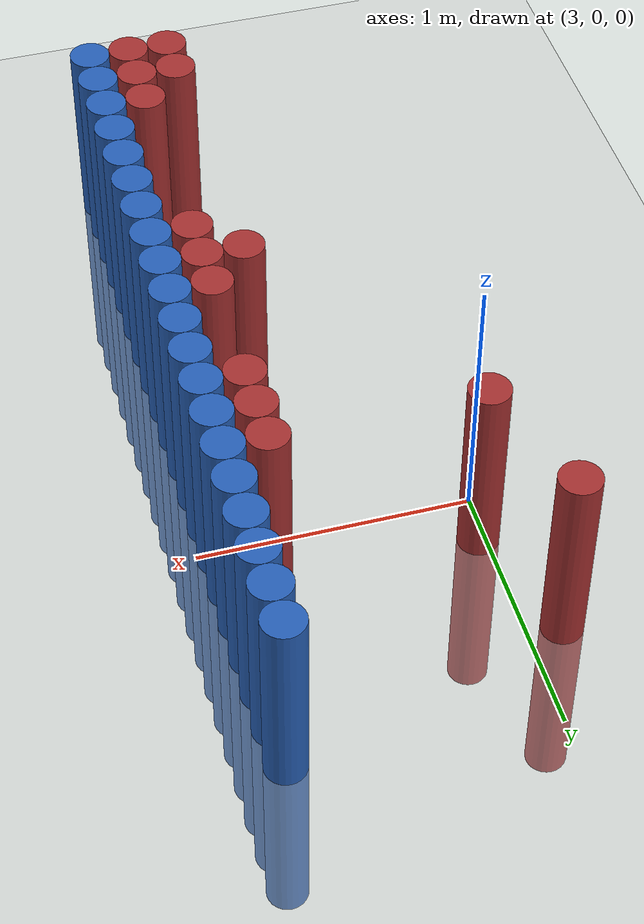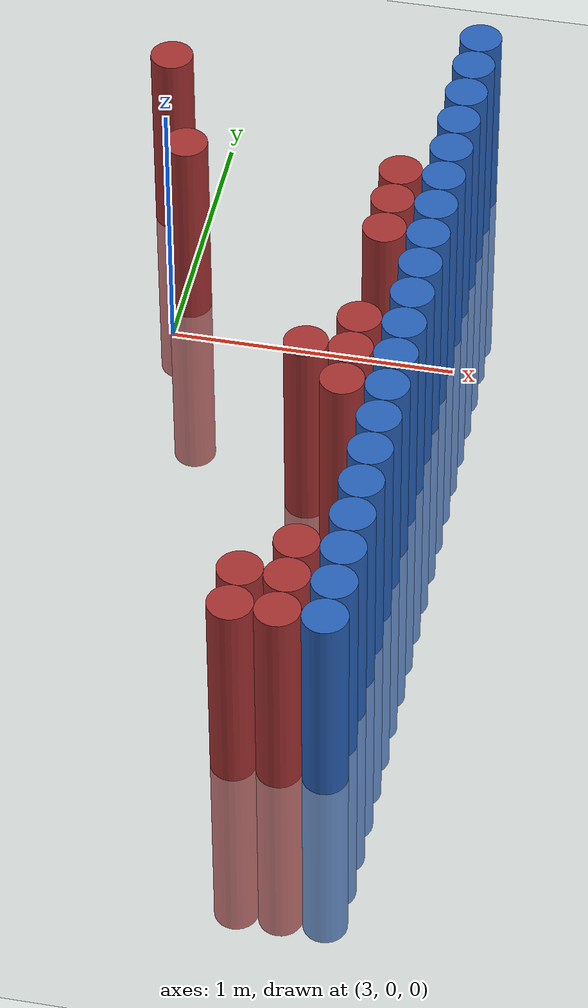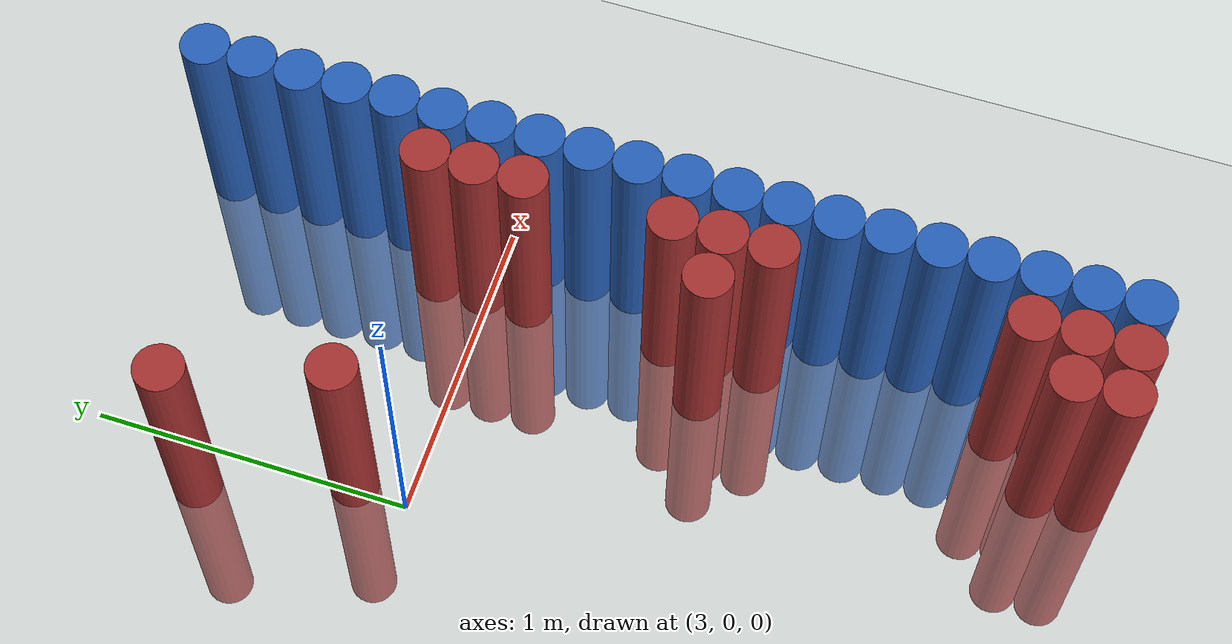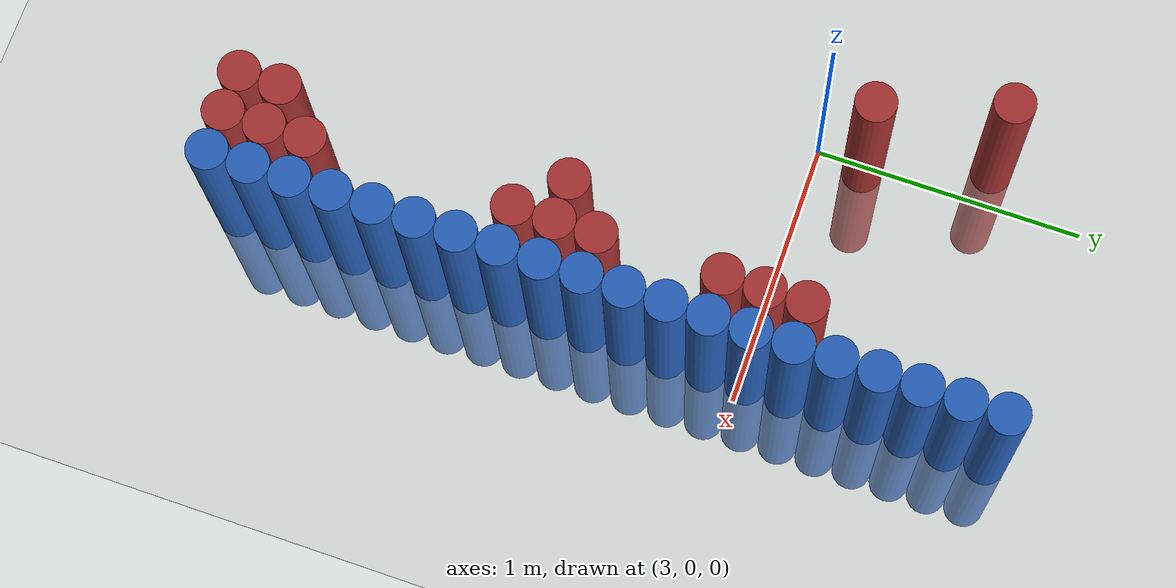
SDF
<sdf version="1.6">
 <world name="default">
  <model name="ground_plane">
   <static>1</static>
   <link name="link">
    <collision name="collision">
     <geometry><plane><normal>0 0 1</normal><size>100 100</size></plane></geometry>
     <surface><friction><ode><mu>100</mu><mu2>50</mu2></ode></friction></surface>
    </collision>
    <visual name="visual">
     <cast_shadows>0</cast_shadows>
     <geometry><plane><normal>0 0 1</normal><size>100 100</size></plane></geometry>
     <material>
      <script><uri>file://media/materials/scripts/gazebo.material</uri><name>Gazebo/Grey</name></script>
     </material>
    </visual>
   </link>
  </model>
  <model name="unit_cylinder_88">
   <static>1</static>
   <pose>3.925000 -1.925000 0.000000 0.000000 0.000000 0.000000</pose>
   <link name="link">
    <inertial>
     <mass>1</mass>
     <inertia><ixx>0.145833</ixx><ixy>0</ixy><ixz>0</ixz><iyy>0.145833</iyy><iyz>0</iyz><izz>0.125</izz></inertia>
    </inertial>
    <collision name="collision">
     <geometry><cylinder><radius>0.075000</radius><length>1.5</length></cylinder></geometry>
    </collision>
    <visual name="visual">
     <geometry><cylinder><radius>0.075000</radius><length>1.5</length></cylinder></geometry>
     <material>
      <ambient>0.152000 0.379000 0.720000 1</ambient>
      <diffuse>0.152000 0.379000 0.720000 1</diffuse>
     </material>
     <material>
      <script><name>Gazebo/Grey</name><uri>file://media/materials/scripts/gazebo.material</uri></script>
     </material>
    </visual>
   </link>
  </model>
  <model name="unit_cylinder_90">
   <static>1</static>
   <pose>3.925000 -1.775000 0.000000 0.000000 0.000000 0.000000</pose>
   <link name="link">
    <inertial>
     <mass>1</mass>
     <inertia><ixx>0.145833</ixx><ixy>0</ixy><ixz>0</ixz><iyy>0.145833</iyy><iyz>0</iyz><izz>0.125</izz></inertia>
    </inertial>
    <collision name="collision">
     <geometry><cylinder><radius>0.075000</radius><length>1.5</length></cylinder></geometry>
    </collision>
    <visual name="visual">
     <geometry><cylinder><radius>0.075000</radius><length>1.5</length></cylinder></geometry>
     <material>
      <ambient>0.152000 0.379000 0.720000 1</ambient>
      <diffuse>0.152000 0.379000 0.720000 1</diffuse>
     </material>
     <material>
      <script><name>Gazebo/Grey</name><uri>file://media/materials/scripts/gazebo.material</uri></script>
     </material>
    </visual>
   </link>
  </model>
  <model name="unit_cylinder_92">
   <static>1</static>
   <pose>3.925000 -1.625000 0.000000 0.000000 0.000000 0.000000</pose>
   <link name="link">
    <inertial>
     <mass>1</mass>
     <inertia><ixx>0.145833</ixx><ixy>0</ixy><ixz>0</ixz><iyy>0.145833</iyy><iyz>0</iyz><izz>0.125</izz></inertia>
    </inertial>
    <collision name="collision">
     <geometry><cylinder><radius>0.075000</radius><length>1.5</length></cylinder></geometry>
    </collision>
    <visual name="visual">
     <geometry><cylinder><radius>0.075000</radius><length>1.5</length></cylinder></geometry>
     <material>
      <ambient>0.152000 0.379000 0.720000 1</ambient>
      <diffuse>0.152000 0.379000 0.720000 1</diffuse>
     </material>
     <material>
      <script><name>Gazebo/Grey</name><uri>file://media/materials/scripts/gazebo.material</uri></script>
     </material>
    </visual>
   </link>
  </model>
  <model name="unit_cylinder_94">
   <static>1</static>
   <pose>3.925000 -1.475000 0.000000 0.000000 0.000000 0.000000</pose>
   <link name="link">
    <inertial>
     <mass>1</mass>
     <inertia><ixx>0.145833</ixx><ixy>0</ixy><ixz>0</ixz><iyy>0.145833</iyy><iyz>0</iyz><izz>0.125</izz></inertia>
    </inertial>
    <collision name="collision">
     <geometry><cylinder><radius>0.075000</radius><length>1.5</length></cylinder></geometry>
    </collision>
    <visual name="visual">
     <geometry><cylinder><radius>0.075000</radius><length>1.5</length></cylinder></geometry>
     <material>
      <ambient>0.152000 0.379000 0.720000 1</ambient>
      <diffuse>0.152000 0.379000 0.720000 1</diffuse>
     </material>
     <material>
      <script><name>Gazebo/Grey</name><uri>file://media/materials/scripts/gazebo.material</uri></script>
     </material>
    </visual>
   </link>
  </model>
  <model name="unit_cylinder_96">
   <static>1</static>
   <pose>3.925000 -1.325000 0.000000 0.000000 0.000000 0.000000</pose>
   <link name="link">
    <inertial>
     <mass>1</mass>
     <inertia><ixx>0.145833</ixx><ixy>0</ixy><ixz>0</ixz><iyy>0.145833</iyy><iyz>0</iyz><izz>0.125</izz></inertia>
    </inertial>
    <collision name="collision">
     <geometry><cylinder><radius>0.075000</radius><length>1.5</length></cylinder></geometry>
    </collision>
    <visual name="visual">
     <geometry><cylinder><radius>0.075000</radius><length>1.5</length></cylinder></geometry>
     <material>
      <ambient>0.152000 0.379000 0.720000 1</ambient>
      <diffuse>0.152000 0.379000 0.720000 1</diffuse>
     </material>
     <material>
      <script><name>Gazebo/Grey</name><uri>file://media/materials/scripts/gazebo.material</uri></script>
     </material>
    </visual>
   </link>
  </model>
  <model name="unit_cylinder_98">
   <static>1</static>
   <pose>3.925000 -1.175000 0.000000 0.000000 0.000000 0.000000</pose>
   <link name="link">
    <inertial>
     <mass>1</mass>
     <inertia><ixx>0.145833</ixx><ixy>0</ixy><ixz>0</ixz><iyy>0.145833</iyy><iyz>0</iyz><izz>0.125</izz></inertia>
    </inertial>
    <collision name="collision">
     <geometry><cylinder><radius>0.075000</radius><length>1.5</length></cylinder></geometry>
    </collision>
    <visual name="visual">
     <geometry><cylinder><radius>0.075000</radius><length>1.5</length></cylinder></geometry>
     <material>
      <ambient>0.152000 0.379000 0.720000 1</ambient>
      <diffuse>0.152000 0.379000 0.720000 1</diffuse>
     </material>
     <material>
      <script><name>Gazebo/Grey</name><uri>file://media/materials/scripts/gazebo.material</uri></script>
     </material>
    </visual>
   </link>
  </model>
  <model name="unit_cylinder_100">
   <static>1</static>
   <pose>3.925000 -1.025000 0.000000 0.000000 0.000000 0.000000</pose>
   <link name="link">
    <inertial>
     <mass>1</mass>
     <inertia><ixx>0.145833</ixx><ixy>0</ixy><ixz>0</ixz><iyy>0.145833</iyy><iyz>0</iyz><izz>0.125</izz></inertia>
    </inertial>
    <collision name="collision">
     <geometry><cylinder><radius>0.075000</radius><length>1.5</length></cylinder></geometry>
    </collision>
    <visual name="visual">
     <geometry><cylinder><radius>0.075000</radius><length>1.5</length></cylinder></geometry>
     <material>
      <ambient>0.152000 0.379000 0.720000 1</ambient>
      <diffuse>0.152000 0.379000 0.720000 1</diffuse>
     </material>
     <material>
      <script><name>Gazebo/Grey</name><uri>file://media/materials/scripts/gazebo.material</uri></script>
     </material>
    </visual>
   </link>
  </model>
  <model name="unit_cylinder_102">
   <static>1</static>
   <pose>3.925000 -0.875000 0.000000 0.000000 0.000000 0.000000</pose>
   <link name="link">
    <inertial>
     <mass>1</mass>
     <inertia><ixx>0.145833</ixx><ixy>0</ixy><ixz>0</ixz><iyy>0.145833</iyy><iyz>0</iyz><izz>0.125</izz></inertia>
    </inertial>
    <collision name="collision">
     <geometry><cylinder><radius>0.075000</radius><length>1.5</length></cylinder></geometry>
    </collision>
    <visual name="visual">
     <geometry><cylinder><radius>0.075000</radius><length>1.5</length></cylinder></geometry>
     <material>
      <ambient>0.152000 0.379000 0.720000 1</ambient>
      <diffuse>0.152000 0.379000 0.720000 1</diffuse>
     </material>
     <material>
      <script><name>Gazebo/Grey</name><uri>file://media/materials/scripts/gazebo.material</uri></script>
     </material>
    </visual>
   </link>
  </model>
  <model name="unit_cylinder_104">
   <static>1</static>
   <pose>3.925000 -0.725000 0.000000 0.000000 0.000000 0.000000</pose>
   <link name="link">
    <inertial>
     <mass>1</mass>
     <inertia><ixx>0.145833</ixx><ixy>0</ixy><ixz>0</ixz><iyy>0.145833</iyy><iyz>0</iyz><izz>0.125</izz></inertia>
    </inertial>
    <collision name="collision">
     <geometry><cylinder><radius>0.075000</radius><length>1.5</length></cylinder></geometry>
    </collision>
    <visual name="visual">
     <geometry><cylinder><radius>0.075000</radius><length>1.5</length></cylinder></geometry>
     <material>
      <ambient>0.152000 0.379000 0.720000 1</ambient>
      <diffuse>0.152000 0.379000 0.720000 1</diffuse>
     </material>
     <material>
      <script><name>Gazebo/Grey</name><uri>file://media/materials/scripts/gazebo.material</uri></script>
     </material>
    </visual>
   </link>
  </model>
  <model name="unit_cylinder_106">
   <static>1</static>
   <pose>3.925000 -0.575000 0.000000 0.000000 0.000000 0.000000</pose>
   <link name="link">
    <inertial>
     <mass>1</mass>
     <inertia><ixx>0.145833</ixx><ixy>0</ixy><ixz>0</ixz><iyy>0.145833</iyy><iyz>0</iyz><izz>0.125</izz></inertia>
    </inertial>
    <collision name="collision">
     <geometry><cylinder><radius>0.075000</radius><length>1.5</length></cylinder></geometry>
    </collision>
    <visual name="visual">
     <geometry><cylinder><radius>0.075000</radius><length>1.5</length></cylinder></geometry>
     <material>
      <ambient>0.152000 0.379000 0.720000 1</ambient>
      <diffuse>0.152000 0.379000 0.720000 1</diffuse>
     </material>
     <material>
      <script><name>Gazebo/Grey</name><uri>file://media/materials/scripts/gazebo.material</uri></script>
     </material>
    </visual>
   </link>
  </model>
  <model name="unit_cylinder_108">
   <static>1</static>
   <pose>3.925000 -0.425000 0.000000 0.000000 0.000000 0.000000</pose>
   <link name="link">
    <inertial>
     <mass>1</mass>
     <inertia><ixx>0.145833</ixx><ixy>0</ixy><ixz>0</ixz><iyy>0.145833</iyy><iyz>0</iyz><izz>0.125</izz></inertia>
    </inertial>
    <collision name="collision">
     <geometry><cylinder><radius>0.075000</radius><length>1.5</length></cylinder></geometry>
    </collision>
    <visual name="visual">
     <geometry><cylinder><radius>0.075000</radius><length>1.5</length></cylinder></geometry>
     <material>
      <ambient>0.152000 0.379000 0.720000 1</ambient>
      <diffuse>0.152000 0.379000 0.720000 1</diffuse>
     </material>
     <material>
      <script><name>Gazebo/Grey</name><uri>file://media/materials/scripts/gazebo.material</uri></script>
     </material>
    </visual>
   </link>
  </model>
  <model name="unit_cylinder_110">
   <static>1</static>
   <pose>3.925000 -0.275000 0.000000 0.000000 0.000000 0.000000</pose>
   <link name="link">
    <inertial>
     <mass>1</mass>
     <inertia><ixx>0.145833</ixx><ixy>0</ixy><ixz>0</ixz><iyy>0.145833</iyy><iyz>0</iyz><izz>0.125</izz></inertia>
    </inertial>
    <collision name="collision">
     <geometry><cylinder><radius>0.075000</radius><length>1.5</length></cylinder></geometry>
    </collision>
    <visual name="visual">
     <geometry><cylinder><radius>0.075000</radius><length>1.5</length></cylinder></geometry>
     <material>
      <ambient>0.152000 0.379000 0.720000 1</ambient>
      <diffuse>0.152000 0.379000 0.720000 1</diffuse>
     </material>
     <material>
      <script><name>Gazebo/Grey</name><uri>file://media/materials/scripts/gazebo.material</uri></script>
     </material>
    </visual>
   </link>
  </model>
  <model name="unit_cylinder_112">
   <static>1</static>
   <pose>3.925000 -0.125000 0.000000 0.000000 0.000000 0.000000</pose>
   <link name="link">
    <inertial>
     <mass>1</mass>
     <inertia><ixx>0.145833</ixx><ixy>0</ixy><ixz>0</ixz><iyy>0.145833</iyy><iyz>0</iyz><izz>0.125</izz></inertia>
    </inertial>
    <collision name="collision">
     <geometry><cylinder><radius>0.075000</radius><length>1.5</length></cylinder></geometry>
    </collision>
    <visual name="visual">
     <geometry><cylinder><radius>0.075000</radius><length>1.5</length></cylinder></geometry>
     <material>
      <ambient>0.152000 0.379000 0.720000 1</ambient>
      <diffuse>0.152000 0.379000 0.720000 1</diffuse>
     </material>
     <material>
      <script><name>Gazebo/Grey</name><uri>file://media/materials/scripts/gazebo.material</uri></script>
     </material>
    </visual>
   </link>
  </model>
  <model name="unit_cylinder_114">
   <static>1</static>
   <pose>3.925000 0.025000 0.000000 0.000000 0.000000 0.000000</pose>
   <link name="link">
    <inertial>
     <mass>1</mass>
     <inertia><ixx>0.145833</ixx><ixy>0</ixy><ixz>0</ixz><iyy>0.145833</iyy><iyz>0</iyz><izz>0.125</izz></inertia>
    </inertial>
    <collision name="collision">
     <geometry><cylinder><radius>0.075000</radius><length>1.5</length></cylinder></geometry>
    </collision>
    <visual name="visual">
     <geometry><cylinder><radius>0.075000</radius><length>1.5</length></cylinder></geometry>
     <material>
      <ambient>0.152000 0.379000 0.720000 1</ambient>
      <diffuse>0.152000 0.379000 0.720000 1</diffuse>
     </material>
     <material>
      <script><name>Gazebo/Grey</name><uri>file://media/materials/scripts/gazebo.material</uri></script>
     </material>
    </visual>
   </link>
  </model>
  <model name="unit_cylinder_116">
   <static>1</static>
   <pose>3.925000 0.175000 0.000000 0.000000 0.000000 0.000000</pose>
   <link name="link">
    <inertial>
     <mass>1</mass>
     <inertia><ixx>0.145833</ixx><ixy>0</ixy><ixz>0</ixz><iyy>0.145833</iyy><iyz>0</iyz><izz>0.125</izz></inertia>
    </inertial>
    <collision name="collision">
     <geometry><cylinder><radius>0.075000</radius><length>1.5</length></cylinder></geometry>
    </collision>
    <visual name="visual">
     <geometry><cylinder><radius>0.075000</radius><length>1.5</length></cylinder></geometry>
     <material>
      <ambient>0.152000 0.379000 0.720000 1</ambient>
      <diffuse>0.152000 0.379000 0.720000 1</diffuse>
     </material>
     <material>
      <script><name>Gazebo/Grey</name><uri>file://media/materials/scripts/gazebo.material</uri></script>
     </material>
    </visual>
   </link>
  </model>
  <model name="unit_cylinder_118">
   <static>1</static>
   <pose>3.925000 0.325000 0.000000 0.000000 0.000000 0.000000</pose>
   <link name="link">
    <inertial>
     <mass>1</mass>
     <inertia><ixx>0.145833</ixx><ixy>0</ixy><ixz>0</ixz><iyy>0.145833</iyy><iyz>0</iyz><izz>0.125</izz></inertia>
    </inertial>
    <collision name="collision">
     <geometry><cylinder><radius>0.075000</radius><length>1.5</length></cylinder></geometry>
    </collision>
    <visual name="visual">
     <geometry><cylinder><radius>0.075000</radius><length>1.5</length></cylinder></geometry>
     <material>
      <ambient>0.152000 0.379000 0.720000 1</ambient>
      <diffuse>0.152000 0.379000 0.720000 1</diffuse>
     </material>
     <material>
      <script><name>Gazebo/Grey</name><uri>file://media/materials/scripts/gazebo.material</uri></script>
     </material>
    </visual>
   </link>
  </model>
  <model name="unit_cylinder_120">
   <static>1</static>
   <pose>3.925000 0.475000 0.000000 0.000000 0.000000 0.000000</pose>
   <link name="link">
    <inertial>
     <mass>1</mass>
     <inertia><ixx>0.145833</ixx><ixy>0</ixy><ixz>0</ixz><iyy>0.145833</iyy><iyz>0</iyz><izz>0.125</izz></inertia>
    </inertial>
    <collision name="collision">
     <geometry><cylinder><radius>0.075000</radius><length>1.5</length></cylinder></geometry>
    </collision>
    <visual name="visual">
     <geometry><cylinder><radius>0.075000</radius><length>1.5</length></cylinder></geometry>
     <material>
      <ambient>0.152000 0.379000 0.720000 1</ambient>
      <diffuse>0.152000 0.379000 0.720000 1</diffuse>
     </material>
     <material>
      <script><name>Gazebo/Grey</name><uri>file://media/materials/scripts/gazebo.material</uri></script>
     </material>
    </visual>
   </link>
  </model>
  <model name="unit_cylinder_122">
   <static>1</static>
   <pose>3.925000 0.625000 0.000000 0.000000 0.000000 0.000000</pose>
   <link name="link">
    <inertial>
     <mass>1</mass>
     <inertia><ixx>0.145833</ixx><ixy>0</ixy><ixz>0</ixz><iyy>0.145833</iyy><iyz>0</iyz><izz>0.125</izz></inertia>
    </inertial>
    <collision name="collision">
     <geometry><cylinder><radius>0.075000</radius><length>1.5</length></cylinder></geometry>
    </collision>
    <visual name="visual">
     <geometry><cylinder><radius>0.075000</radius><length>1.5</length></cylinder></geometry>
     <material>
      <ambient>0.152000 0.379000 0.720000 1</ambient>
      <diffuse>0.152000 0.379000 0.720000 1</diffuse>
     </material>
     <material>
      <script><name>Gazebo/Grey</name><uri>file://media/materials/scripts/gazebo.material</uri></script>
     </material>
    </visual>
   </link>
  </model>
  <model name="unit_cylinder_124">
   <static>1</static>
   <pose>3.925000 0.775000 0.000000 0.000000 0.000000 0.000000</pose>
   <link name="link">
    <inertial>
     <mass>1</mass>
     <inertia><ixx>0.145833</ixx><ixy>0</ixy><ixz>0</ixz><iyy>0.145833</iyy><iyz>0</iyz><izz>0.125</izz></inertia>
    </inertial>
    <collision name="collision">
     <geometry><cylinder><radius>0.075000</radius><length>1.5</length></cylinder></geometry>
    </collision>
    <visual name="visual">
     <geometry><cylinder><radius>0.075000</radius><length>1.5</length></cylinder></geometry>
     <material>
      <ambient>0.152000 0.379000 0.720000 1</ambient>
      <diffuse>0.152000 0.379000 0.720000 1</diffuse>
     </material>
     <material>
      <script><name>Gazebo/Grey</name><uri>file://media/materials/scripts/gazebo.material</uri></script>
     </material>
    </visual>
   </link>
  </model>
  <model name="unit_cylinder_126">
   <static>1</static>
   <pose>3.925000 0.925000 0.000000 0.000000 0.000000 0.000000</pose>
   <link name="link">
    <inertial>
     <mass>1</mass>
     <inertia><ixx>0.145833</ixx><ixy>0</ixy><ixz>0</ixz><iyy>0.145833</iyy><iyz>0</iyz><izz>0.125</izz></inertia>
    </inertial>
    <collision name="collision">
     <geometry><cylinder><radius>0.075000</radius><length>1.5</length></cylinder></geometry>
    </collision>
    <visual name="visual">
     <geometry><cylinder><radius>0.075000</radius><length>1.5</length></cylinder></geometry>
     <material>
      <ambient>0.152000 0.379000 0.720000 1</ambient>
      <diffuse>0.152000 0.379000 0.720000 1</diffuse>
     </material>
     <material>
      <script><name>Gazebo/Grey</name><uri>file://media/materials/scripts/gazebo.material</uri></script>
     </material>
    </visual>
   </link>
  </model>
  <model name="unit_cylinder_530">
   <static>1</static>
   <pose>2.875000 0.625000 0.000000 0.000000 0.000000 0.000000</pose>
   <link name="link">
    <inertial>
     <mass>1</mass>
     <inertia><ixx>0.145833</ixx><ixy>0</ixy><ixz>0</ixz><iyy>0.145833</iyy><iyz>0</iyz><izz>0.125</izz></inertia>
    </inertial>
    <collision name="collision">
     <geometry><cylinder><radius>0.075000</radius><length>1.5</length></cylinder></geometry>
    </collision>
    <visual name="visual">
     <geometry><cylinder><radius>0.075000</radius><length>1.5</length></cylinder></geometry>
     <material>
      <ambient>0.648000 0.192000 0.192000 1</ambient>
      <diffuse>0.648000 0.192000 0.192000 1</diffuse>
     </material>
     <material>
      <script><name>Gazebo/Grey</name><uri>file://media/materials/scripts/gazebo.material</uri></script>
     </material>
    </visual>
   </link>
  </model>
  <model name="unit_cylinder_531">
   <static>1</static>
   <pose>3.025000 0.175000 0.000000 0.000000 0.000000 0.000000</pose>
   <link name="link">
    <inertial>
     <mass>1</mass>
     <inertia><ixx>0.145833</ixx><ixy>0</ixy><ixz>0</ixz><iyy>0.145833</iyy><iyz>0</iyz><izz>0.125</izz></inertia>
    </inertial>
    <collision name="collision">
     <geometry><cylinder><radius>0.075000</radius><length>1.5</length></cylinder></geometry>
    </collision>
    <visual name="visual">
     <geometry><cylinder><radius>0.075000</radius><length>1.5</length></cylinder></geometry>
     <material>
      <ambient>0.648000 0.192000 0.192000 1</ambient>
      <diffuse>0.648000 0.192000 0.192000 1</diffuse>
     </material>
     <material>
      <script><name>Gazebo/Grey</name><uri>file://media/materials/scripts/gazebo.material</uri></script>
     </material>
    </visual>
   </link>
  </model>
  <model name="unit_cylinder_538">
   <static>1</static>
   <pose>3.625000 -1.925000 0.000000 0.000000 0.000000 0.000000</pose>
   <link name="link">
    <inertial>
     <mass>1</mass>
     <inertia><ixx>0.145833</ixx><ixy>0</ixy><ixz>0</ixz><iyy>0.145833</iyy><iyz>0</iyz><izz>0.125</izz></inertia>
    </inertial>
    <collision name="collision">
     <geometry><cylinder><radius>0.075000</radius><length>1.5</length></cylinder></geometry>
    </collision>
    <visual name="visual">
     <geometry><cylinder><radius>0.075000</radius><length>1.5</length></cylinder></geometry>
     <material>
      <ambient>0.648000 0.192000 0.192000 1</ambient>
      <diffuse>0.648000 0.192000 0.192000 1</diffuse>
     </material>
     <material>
      <script><name>Gazebo/Grey</name><uri>file://media/materials/scripts/gazebo.material</uri></script>
     </material>
    </visual>
   </link>
  </model>
  <model name="unit_cylinder_539">
   <static>1</static>
   <pose>3.625000 -1.775000 0.000000 0.000000 0.000000 0.000000</pose>
   <link name="link">
    <inertial>
     <mass>1</mass>
     <inertia><ixx>0.145833</ixx><ixy>0</ixy><ixz>0</ixz><iyy>0.145833</iyy><iyz>0</iyz><izz>0.125</izz></inertia>
    </inertial>
    <collision name="collision">
     <geometry><cylinder><radius>0.075000</radius><length>1.5</length></cylinder></geometry>
    </collision>
    <visual name="visual">
     <geometry><cylinder><radius>0.075000</radius><length>1.5</length></cylinder></geometry>
     <material>
      <ambient>0.648000 0.192000 0.192000 1</ambient>
      <diffuse>0.648000 0.192000 0.192000 1</diffuse>
     </material>
     <material>
      <script><name>Gazebo/Grey</name><uri>file://media/materials/scripts/gazebo.material</uri></script>
     </material>
    </visual>
   </link>
  </model>
  <model name="unit_cylinder_540">
   <static>1</static>
   <pose>3.625000 -0.725000 0.000000 0.000000 0.000000 0.000000</pose>
   <link name="link">
    <inertial>
     <mass>1</mass>
     <inertia><ixx>0.145833</ixx><ixy>0</ixy><ixz>0</ixz><iyy>0.145833</iyy><iyz>0</iyz><izz>0.125</izz></inertia>
    </inertial>
    <collision name="collision">
     <geometry><cylinder><radius>0.075000</radius><length>1.5</length></cylinder></geometry>
    </collision>
    <visual name="visual">
     <geometry><cylinder><radius>0.075000</radius><length>1.5</length></cylinder></geometry>
     <material>
      <ambient>0.648000 0.192000 0.192000 1</ambient>
      <diffuse>0.648000 0.192000 0.192000 1</diffuse>
     </material>
     <material>
      <script><name>Gazebo/Grey</name><uri>file://media/materials/scripts/gazebo.material</uri></script>
     </material>
    </visual>
   </link>
  </model>
  <model name="unit_cylinder_547">
   <static>1</static>
   <pose>3.775000 -1.925000 0.000000 0.000000 0.000000 0.000000</pose>
   <link name="link">
    <inertial>
     <mass>1</mass>
     <inertia><ixx>0.145833</ixx><ixy>0</ixy><ixz>0</ixz><iyy>0.145833</iyy><iyz>0</iyz><izz>0.125</izz></inertia>
    </inertial>
    <collision name="collision">
     <geometry><cylinder><radius>0.075000</radius><length>1.5</length></cylinder></geometry>
    </collision>
    <visual name="visual">
     <geometry><cylinder><radius>0.075000</radius><length>1.5</length></cylinder></geometry>
     <material>
      <ambient>0.648000 0.192000 0.192000 1</ambient>
      <diffuse>0.648000 0.192000 0.192000 1</diffuse>
     </material>
     <material>
      <script><name>Gazebo/Grey</name><uri>file://media/materials/scripts/gazebo.material</uri></script>
     </material>
    </visual>
   </link>
  </model>
  <model name="unit_cylinder_548">
   <static>1</static>
   <pose>3.775000 -1.775000 0.000000 0.000000 0.000000 0.000000</pose>
   <link name="link">
    <inertial>
     <mass>1</mass>
     <inertia><ixx>0.145833</ixx><ixy>0</ixy><ixz>0</ixz><iyy>0.145833</iyy><iyz>0</iyz><izz>0.125</izz></inertia>
    </inertial>
    <collision name="collision">
     <geometry><cylinder><radius>0.075000</radius><length>1.5</length></cylinder></geometry>
    </collision>
    <visual name="visual">
     <geometry><cylinder><radius>0.075000</radius><length>1.5</length></cylinder></geometry>
     <material>
      <ambient>0.648000 0.192000 0.192000 1</ambient>
      <diffuse>0.648000 0.192000 0.192000 1</diffuse>
     </material>
     <material>
      <script><name>Gazebo/Grey</name><uri>file://media/materials/scripts/gazebo.material</uri></script>
     </material>
    </visual>
   </link>
  </model>
  <model name="unit_cylinder_549">
   <static>1</static>
   <pose>3.775000 -1.625000 0.000000 0.000000 0.000000 0.000000</pose>
   <link name="link">
    <inertial>
     <mass>1</mass>
     <inertia><ixx>0.145833</ixx><ixy>0</ixy><ixz>0</ixz><iyy>0.145833</iyy><iyz>0</iyz><izz>0.125</izz></inertia>
    </inertial>
    <collision name="collision">
     <geometry><cylinder><radius>0.075000</radius><length>1.5</length></cylinder></geometry>
    </collision>
    <visual name="visual">
     <geometry><cylinder><radius>0.075000</radius><length>1.5</length></cylinder></geometry>
     <material>
      <ambient>0.648000 0.192000 0.192000 1</ambient>
      <diffuse>0.648000 0.192000 0.192000 1</diffuse>
     </material>
     <material>
      <script><name>Gazebo/Grey</name><uri>file://media/materials/scripts/gazebo.material</uri></script>
     </material>
    </visual>
   </link>
  </model>
  <model name="unit_cylinder_550">
   <static>1</static>
   <pose>3.775000 -0.875000 0.000000 0.000000 0.000000 0.000000</pose>
   <link name="link">
    <inertial>
     <mass>1</mass>
     <inertia><ixx>0.145833</ixx><ixy>0</ixy><ixz>0</ixz><iyy>0.145833</iyy><iyz>0</iyz><izz>0.125</izz></inertia>
    </inertial>
    <collision name="collision">
     <geometry><cylinder><radius>0.075000</radius><length>1.5</length></cylinder></geometry>
    </collision>
    <visual name="visual">
     <geometry><cylinder><radius>0.075000</radius><length>1.5</length></cylinder></geometry>
     <material>
      <ambient>0.648000 0.192000 0.192000 1</ambient>
      <diffuse>0.648000 0.192000 0.192000 1</diffuse>
     </material>
     <material>
      <script><name>Gazebo/Grey</name><uri>file://media/materials/scripts/gazebo.material</uri></script>
     </material>
    </visual>
   </link>
  </model>
  <model name="unit_cylinder_551">
   <static>1</static>
   <pose>3.775000 -0.725000 0.000000 0.000000 0.000000 0.000000</pose>
   <link name="link">
    <inertial>
     <mass>1</mass>
     <inertia><ixx>0.145833</ixx><ixy>0</ixy><ixz>0</ixz><iyy>0.145833</iyy><iyz>0</iyz><izz>0.125</izz></inertia>
    </inertial>
    <collision name="collision">
     <geometry><cylinder><radius>0.075000</radius><length>1.5</length></cylinder></geometry>
    </collision>
    <visual name="visual">
     <geometry><cylinder><radius>0.075000</radius><length>1.5</length></cylinder></geometry>
     <material>
      <ambient>0.648000 0.192000 0.192000 1</ambient>
      <diffuse>0.648000 0.192000 0.192000 1</diffuse>
     </material>
     <material>
      <script><name>Gazebo/Grey</name><uri>file://media/materials/scripts/gazebo.material</uri></script>
     </material>
    </visual>
   </link>
  </model>
  <model name="unit_cylinder_552">
   <static>1</static>
   <pose>3.775000 -0.575000 0.000000 0.000000 0.000000 0.000000</pose>
   <link name="link">
    <inertial>
     <mass>1</mass>
     <inertia><ixx>0.145833</ixx><ixy>0</ixy><ixz>0</ixz><iyy>0.145833</iyy><iyz>0</iyz><izz>0.125</izz></inertia>
    </inertial>
    <collision name="collision">
     <geometry><cylinder><radius>0.075000</radius><length>1.5</length></cylinder></geometry>
    </collision>
    <visual name="visual">
     <geometry><cylinder><radius>0.075000</radius><length>1.5</length></cylinder></geometry>
     <material>
      <ambient>0.648000 0.192000 0.192000 1</ambient>
      <diffuse>0.648000 0.192000 0.192000 1</diffuse>
     </material>
     <material>
      <script><name>Gazebo/Grey</name><uri>file://media/materials/scripts/gazebo.material</uri></script>
     </material>
    </visual>
   </link>
  </model>
  <model name="unit_cylinder_553">
   <static>1</static>
   <pose>3.775000 -0.125000 0.000000 0.000000 0.000000 0.000000</pose>
   <link name="link">
    <inertial>
     <mass>1</mass>
     <inertia><ixx>0.145833</ixx><ixy>0</ixy><ixz>0</ixz><iyy>0.145833</iyy><iyz>0</iyz><izz>0.125</izz></inertia>
    </inertial>
    <collision name="collision">
     <geometry><cylinder><radius>0.075000</radius><length>1.5</length></cylinder></geometry>
    </collision>
    <visual name="visual">
     <geometry><cylinder><radius>0.075000</radius><length>1.5</length></cylinder></geometry>
     <material>
      <ambient>0.648000 0.192000 0.192000 1</ambient>
      <diffuse>0.648000 0.192000 0.192000 1</diffuse>
     </material>
     <material>
      <script><name>Gazebo/Grey</name><uri>file://media/materials/scripts/gazebo.material</uri></script>
     </material>
    </visual>
   </link>
  </model>
  <model name="unit_cylinder_554">
   <static>1</static>
   <pose>3.775000 0.025000 0.000000 0.000000 0.000000 0.000000</pose>
   <link name="link">
    <inertial>
     <mass>1</mass>
     <inertia><ixx>0.145833</ixx><ixy>0</ixy><ixz>0</ixz><iyy>0.145833</iyy><iyz>0</iyz><izz>0.125</izz></inertia>
    </inertial>
    <collision name="collision">
     <geometry><cylinder><radius>0.075000</radius><length>1.5</length></cylinder></geometry>
    </collision>
    <visual name="visual">
     <geometry><cylinder><radius>0.075000</radius><length>1.5</length></cylinder></geometry>
     <material>
      <ambient>0.648000 0.192000 0.192000 1</ambient>
      <diffuse>0.648000 0.192000 0.192000 1</diffuse>
     </material>
     <material>
      <script><name>Gazebo/Grey</name><uri>file://media/materials/scripts/gazebo.material</uri></script>
     </material>
    </visual>
   </link>
  </model>
  <model name="unit_cylinder_555">
   <static>1</static>
   <pose>3.775000 0.175000 0.000000 0.000000 0.000000 0.000000</pose>
   <link name="link">
    <inertial>
     <mass>1</mass>
     <inertia><ixx>0.145833</ixx><ixy>0</ixy><ixz>0</ixz><iyy>0.145833</iyy><iyz>0</iyz><izz>0.125</izz></inertia>
    </inertial>
    <collision name="collision">
     <geometry><cylinder><radius>0.075000</radius><length>1.5</length></cylinder></geometry>
    </collision>
    <visual name="visual">
     <geometry><cylinder><radius>0.075000</radius><length>1.5</length></cylinder></geometry>
     <material>
      <ambient>0.648000 0.192000 0.192000 1</ambient>
      <diffuse>0.648000 0.192000 0.192000 1</diffuse>
     </material>
     <material>
      <script><name>Gazebo/Grey</name><uri>file://media/materials/scripts/gazebo.material</uri></script>
     </material>
    </visual>
   </link>
  </model>
  <model name="unit_cylinder_576">
   <static>1</static>
   <pose>3.925000 -1.925000 0.000000 0.000000 0.000000 0.000000</pose>
   <link name="link">
    <inertial>
     <mass>1</mass>
     <inertia><ixx>0.145833</ixx><ixy>0</ixy><ixz>0</ixz><iyy>0.145833</iyy><iyz>0</iyz><izz>0.125</izz></inertia>
    </inertial>
    <collision name="collision">
     <geometry><cylinder><radius>0.075000</radius><length>1.5</length></cylinder></geometry>
    </collision>
    <visual name="visual">
     <geometry><cylinder><radius>0.075000</radius><length>1.5</length></cylinder></geometry>
     <material>
      <ambient>0.152000 0.379000 0.720000 1</ambient>
      <diffuse>0.152000 0.379000 0.720000 1</diffuse>
     </material>
     <material>
      <script><name>Gazebo/Grey</name><uri>file://media/materials/scripts/gazebo.material</uri></script>
     </material>
    </visual>
   </link>
  </model>
  <model name="unit_cylinder_577">
   <static>1</static>
   <pose>3.925000 -1.775000 0.000000 0.000000 0.000000 0.000000</pose>
   <link name="link">
    <inertial>
     <mass>1</mass>
     <inertia><ixx>0.145833</ixx><ixy>0</ixy><ixz>0</ixz><iyy>0.145833</iyy><iyz>0</iyz><izz>0.125</izz></inertia>
    </inertial>
    <collision name="collision">
     <geometry><cylinder><radius>0.075000</radius><length>1.5</length></cylinder></geometry>
    </collision>
    <visual name="visual">
     <geometry><cylinder><radius>0.075000</radius><length>1.5</length></cylinder></geometry>
     <material>
      <ambient>0.152000 0.379000 0.720000 1</ambient>
      <diffuse>0.152000 0.379000 0.720000 1</diffuse>
     </material>
     <material>
      <script><name>Gazebo/Grey</name><uri>file://media/materials/scripts/gazebo.material</uri></script>
     </material>
    </visual>
   </link>
  </model>
  <model name="unit_cylinder_578">
   <static>1</static>
   <pose>3.925000 -1.625000 0.000000 0.000000 0.000000 0.000000</pose>
   <link name="link">
    <inertial>
     <mass>1</mass>
     <inertia><ixx>0.145833</ixx><ixy>0</ixy><ixz>0</ixz><iyy>0.145833</iyy><iyz>0</iyz><izz>0.125</izz></inertia>
    </inertial>
    <collision name="collision">
     <geometry><cylinder><radius>0.075000</radius><length>1.5</length></cylinder></geometry>
    </collision>
    <visual name="visual">
     <geometry><cylinder><radius>0.075000</radius><length>1.5</length></cylinder></geometry>
     <material>
      <ambient>0.152000 0.379000 0.720000 1</ambient>
      <diffuse>0.152000 0.379000 0.720000 1</diffuse>
     </material>
     <material>
      <script><name>Gazebo/Grey</name><uri>file://media/materials/scripts/gazebo.material</uri></script>
     </material>
    </visual>
   </link>
  </model>
  <model name="unit_cylinder_579">
   <static>1</static>
   <pose>3.925000 -1.475000 0.000000 0.000000 0.000000 0.000000</pose>
   <link name="link">
    <inertial>
     <mass>1</mass>
     <inertia><ixx>0.145833</ixx><ixy>0</ixy><ixz>0</ixz><iyy>0.145833</iyy><iyz>0</iyz><izz>0.125</izz></inertia>
    </inertial>
    <collision name="collision">
     <geometry><cylinder><radius>0.075000</radius><length>1.5</length></cylinder></geometry>
    </collision>
    <visual name="visual">
     <geometry><cylinder><radius>0.075000</radius><length>1.5</length></cylinder></geometry>
     <material>
      <ambient>0.152000 0.379000 0.720000 1</ambient>
      <diffuse>0.152000 0.379000 0.720000 1</diffuse>
     </material>
     <material>
      <script><name>Gazebo/Grey</name><uri>file://media/materials/scripts/gazebo.material</uri></script>
     </material>
    </visual>
   </link>
  </model>
  <model name="unit_cylinder_580">
   <static>1</static>
   <pose>3.925000 -1.325000 0.000000 0.000000 0.000000 0.000000</pose>
   <link name="link">
    <inertial>
     <mass>1</mass>
     <inertia><ixx>0.145833</ixx><ixy>0</ixy><ixz>0</ixz><iyy>0.145833</iyy><iyz>0</iyz><izz>0.125</izz></inertia>
    </inertial>
    <collision name="collision">
     <geometry><cylinder><radius>0.075000</radius><length>1.5</length></cylinder></geometry>
    </collision>
    <visual name="visual">
     <geometry><cylinder><radius>0.075000</radius><length>1.5</length></cylinder></geometry>
     <material>
      <ambient>0.152000 0.379000 0.720000 1</ambient>
      <diffuse>0.152000 0.379000 0.720000 1</diffuse>
     </material>
     <material>
      <script><name>Gazebo/Grey</name><uri>file://media/materials/scripts/gazebo.material</uri></script>
     </material>
    </visual>
   </link>
  </model>
  <model name="unit_cylinder_581">
   <static>1</static>
   <pose>3.925000 -1.175000 0.000000 0.000000 0.000000 0.000000</pose>
   <link name="link">
    <inertial>
     <mass>1</mass>
     <inertia><ixx>0.145833</ixx><ixy>0</ixy><ixz>0</ixz><iyy>0.145833</iyy><iyz>0</iyz><izz>0.125</izz></inertia>
    </inertial>
    <collision name="collision">
     <geometry><cylinder><radius>0.075000</radius><length>1.5</length></cylinder></geometry>
    </collision>
    <visual name="visual">
     <geometry><cylinder><radius>0.075000</radius><length>1.5</length></cylinder></geometry>
     <material>
      <ambient>0.152000 0.379000 0.720000 1</ambient>
      <diffuse>0.152000 0.379000 0.720000 1</diffuse>
     </material>
     <material>
      <script><name>Gazebo/Grey</name><uri>file://media/materials/scripts/gazebo.material</uri></script>
     </material>
    </visual>
   </link>
  </model>
  <model name="unit_cylinder_582">
   <static>1</static>
   <pose>3.925000 -1.025000 0.000000 0.000000 0.000000 0.000000</pose>
   <link name="link">
    <inertial>
     <mass>1</mass>
     <inertia><ixx>0.145833</ixx><ixy>0</ixy><ixz>0</ixz><iyy>0.145833</iyy><iyz>0</iyz><izz>0.125</izz></inertia>
    </inertial>
    <collision name="collision">
     <geometry><cylinder><radius>0.075000</radius><length>1.5</length></cylinder></geometry>
    </collision>
    <visual name="visual">
     <geometry><cylinder><radius>0.075000</radius><length>1.5</length></cylinder></geometry>
     <material>
      <ambient>0.152000 0.379000 0.720000 1</ambient>
      <diffuse>0.152000 0.379000 0.720000 1</diffuse>
     </material>
     <material>
      <script><name>Gazebo/Grey</name><uri>file://media/materials/scripts/gazebo.material</uri></script>
     </material>
    </visual>
   </link>
  </model>
  <model name="unit_cylinder_583">
   <static>1</static>
   <pose>3.925000 -0.875000 0.000000 0.000000 0.000000 0.000000</pose>
   <link name="link">
    <inertial>
     <mass>1</mass>
     <inertia><ixx>0.145833</ixx><ixy>0</ixy><ixz>0</ixz><iyy>0.145833</iyy><iyz>0</iyz><izz>0.125</izz></inertia>
    </inertial>
    <collision name="collision">
     <geometry><cylinder><radius>0.075000</radius><length>1.5</length></cylinder></geometry>
    </collision>
    <visual name="visual">
     <geometry><cylinder><radius>0.075000</radius><length>1.5</length></cylinder></geometry>
     <material>
      <ambient>0.152000 0.379000 0.720000 1</ambient>
      <diffuse>0.152000 0.379000 0.720000 1</diffuse>
     </material>
     <material>
      <script><name>Gazebo/Grey</name><uri>file://media/materials/scripts/gazebo.material</uri></script>
     </material>
    </visual>
   </link>
  </model>
  <model name="unit_cylinder_584">
   <static>1</static>
   <pose>3.925000 -0.725000 0.000000 0.000000 0.000000 0.000000</pose>
   <link name="link">
    <inertial>
     <mass>1</mass>
     <inertia><ixx>0.145833</ixx><ixy>0</ixy><ixz>0</ixz><iyy>0.145833</iyy><iyz>0</iyz><izz>0.125</izz></inertia>
    </inertial>
    <collision name="collision">
     <geometry><cylinder><radius>0.075000</radius><length>1.5</length></cylinder></geometry>
    </collision>
    <visual name="visual">
     <geometry><cylinder><radius>0.075000</radius><length>1.5</length></cylinder></geometry>
     <material>
      <ambient>0.152000 0.379000 0.720000 1</ambient>
      <diffuse>0.152000 0.379000 0.720000 1</diffuse>
     </material>
     <material>
      <script><name>Gazebo/Grey</name><uri>file://media/materials/scripts/gazebo.material</uri></script>
     </material>
    </visual>
   </link>
  </model>
  <model name="unit_cylinder_585">
   <static>1</static>
   <pose>3.925000 -0.575000 0.000000 0.000000 0.000000 0.000000</pose>
   <link name="link">
    <inertial>
     <mass>1</mass>
     <inertia><ixx>0.145833</ixx><ixy>0</ixy><ixz>0</ixz><iyy>0.145833</iyy><iyz>0</iyz><izz>0.125</izz></inertia>
    </inertial>
    <collision name="collision">
     <geometry><cylinder><radius>0.075000</radius><length>1.5</length></cylinder></geometry>
    </collision>
    <visual name="visual">
     <geometry><cylinder><radius>0.075000</radius><length>1.5</length></cylinder></geometry>
     <material>
      <ambient>0.152000 0.379000 0.720000 1</ambient>
      <diffuse>0.152000 0.379000 0.720000 1</diffuse>
     </material>
     <material>
      <script><name>Gazebo/Grey</name><uri>file://media/materials/scripts/gazebo.material</uri></script>
     </material>
    </visual>
   </link>
  </model>
  <model name="unit_cylinder_586">
   <static>1</static>
   <pose>3.925000 -0.425000 0.000000 0.000000 0.000000 0.000000</pose>
   <link name="link">
    <inertial>
     <mass>1</mass>
     <inertia><ixx>0.145833</ixx><ixy>0</ixy><ixz>0</ixz><iyy>0.145833</iyy><iyz>0</iyz><izz>0.125</izz></inertia>
    </inertial>
    <collision name="collision">
     <geometry><cylinder><radius>0.075000</radius><length>1.5</length></cylinder></geometry>
    </collision>
    <visual name="visual">
     <geometry><cylinder><radius>0.075000</radius><length>1.5</length></cylinder></geometry>
     <material>
      <ambient>0.152000 0.379000 0.720000 1</ambient>
      <diffuse>0.152000 0.379000 0.720000 1</diffuse>
     </material>
     <material>
      <script><name>Gazebo/Grey</name><uri>file://media/materials/scripts/gazebo.material</uri></script>
     </material>
    </visual>
   </link>
  </model>
  <model name="unit_cylinder_587">
   <static>1</static>
   <pose>3.925000 -0.275000 0.000000 0.000000 0.000000 0.000000</pose>
   <link name="link">
    <inertial>
     <mass>1</mass>
     <inertia><ixx>0.145833</ixx><ixy>0</ixy><ixz>0</ixz><iyy>0.145833</iyy><iyz>0</iyz><izz>0.125</izz></inertia>
    </inertial>
    <collision name="collision">
     <geometry><cylinder><radius>0.075000</radius><length>1.5</length></cylinder></geometry>
    </collision>
    <visual name="visual">
     <geometry><cylinder><radius>0.075000</radius><length>1.5</length></cylinder></geometry>
     <material>
      <ambient>0.152000 0.379000 0.720000 1</ambient>
      <diffuse>0.152000 0.379000 0.720000 1</diffuse>
     </material>
     <material>
      <script><name>Gazebo/Grey</name><uri>file://media/materials/scripts/gazebo.material</uri></script>
     </material>
    </visual>
   </link>
  </model>
  <model name="unit_cylinder_588">
   <static>1</static>
   <pose>3.925000 -0.125000 0.000000 0.000000 0.000000 0.000000</pose>
   <link name="link">
    <inertial>
     <mass>1</mass>
     <inertia><ixx>0.145833</ixx><ixy>0</ixy><ixz>0</ixz><iyy>0.145833</iyy><iyz>0</iyz><izz>0.125</izz></inertia>
    </inertial>
    <collision name="collision">
     <geometry><cylinder><radius>0.075000</radius><length>1.5</length></cylinder></geometry>
    </collision>
    <visual name="visual">
     <geometry><cylinder><radius>0.075000</radius><length>1.5</length></cylinder></geometry>
     <material>
      <ambient>0.152000 0.379000 0.720000 1</ambient>
      <diffuse>0.152000 0.379000 0.720000 1</diffuse>
     </material>
     <material>
      <script><name>Gazebo/Grey</name><uri>file://media/materials/scripts/gazebo.material</uri></script>
     </material>
    </visual>
   </link>
  </model>
  <model name="unit_cylinder_589">
   <static>1</static>
   <pose>3.925000 0.025000 0.000000 0.000000 0.000000 0.000000</pose>
   <link name="link">
    <inertial>
     <mass>1</mass>
     <inertia><ixx>0.145833</ixx><ixy>0</ixy><ixz>0</ixz><iyy>0.145833</iyy><iyz>0</iyz><izz>0.125</izz></inertia>
    </inertial>
    <collision name="collision">
     <geometry><cylinder><radius>0.075000</radius><length>1.5</length></cylinder></geometry>
    </collision>
    <visual name="visual">
     <geometry><cylinder><radius>0.075000</radius><length>1.5</length></cylinder></geometry>
     <material>
      <ambient>0.152000 0.379000 0.720000 1</ambient>
      <diffuse>0.152000 0.379000 0.720000 1</diffuse>
     </material>
     <material>
      <script><name>Gazebo/Grey</name><uri>file://media/materials/scripts/gazebo.material</uri></script>
     </material>
    </visual>
   </link>
  </model>
  <model name="unit_cylinder_590">
   <static>1</static>
   <pose>3.925000 0.175000 0.000000 0.000000 0.000000 0.000000</pose>
   <link name="link">
    <inertial>
     <mass>1</mass>
     <inertia><ixx>0.145833</ixx><ixy>0</ixy><ixz>0</ixz><iyy>0.145833</iyy><iyz>0</iyz><izz>0.125</izz></inertia>
    </inertial>
    <collision name="collision">
     <geometry><cylinder><radius>0.075000</radius><length>1.5</length></cylinder></geometry>
    </collision>
    <visual name="visual">
     <geometry><cylinder><radius>0.075000</radius><length>1.5</length></cylinder></geometry>
     <material>
      <ambient>0.152000 0.379000 0.720000 1</ambient>
      <diffuse>0.152000 0.379000 0.720000 1</diffuse>
     </material>
     <material>
      <script><name>Gazebo/Grey</name><uri>file://media/materials/scripts/gazebo.material</uri></script>
     </material>
    </visual>
   </link>
  </model>
  <model name="unit_cylinder_591">
   <static>1</static>
   <pose>3.925000 0.325000 0.000000 0.000000 0.000000 0.000000</pose>
   <link name="link">
    <inertial>
     <mass>1</mass>
     <inertia><ixx>0.145833</ixx><ixy>0</ixy><ixz>0</ixz><iyy>0.145833</iyy><iyz>0</iyz><izz>0.125</izz></inertia>
    </inertial>
    <collision name="collision">
     <geometry><cylinder><radius>0.075000</radius><length>1.5</length></cylinder></geometry>
    </collision>
    <visual name="visual">
     <geometry><cylinder><radius>0.075000</radius><length>1.5</length></cylinder></geometry>
     <material>
      <ambient>0.152000 0.379000 0.720000 1</ambient>
      <diffuse>0.152000 0.379000 0.720000 1</diffuse>
     </material>
     <material>
      <script><name>Gazebo/Grey</name><uri>file://media/materials/scripts/gazebo.material</uri></script>
     </material>
    </visual>
   </link>
  </model>
  <model name="unit_cylinder_592">
   <static>1</static>
   <pose>3.925000 0.475000 0.000000 0.000000 0.000000 0.000000</pose>
   <link name="link">
    <inertial>
     <mass>1</mass>
     <inertia><ixx>0.145833</ixx><ixy>0</ixy><ixz>0</ixz><iyy>0.145833</iyy><iyz>0</iyz><izz>0.125</izz></inertia>
    </inertial>
    <collision name="collision">
     <geometry><cylinder><radius>0.075000</radius><length>1.5</length></cylinder></geometry>
    </collision>
    <visual name="visual">
     <geometry><cylinder><radius>0.075000</radius><length>1.5</length></cylinder></geometry>
     <material>
      <ambient>0.152000 0.379000 0.720000 1</ambient>
      <diffuse>0.152000 0.379000 0.720000 1</diffuse>
     </material>
     <material>
      <script><name>Gazebo/Grey</name><uri>file://media/materials/scripts/gazebo.material</uri></script>
     </material>
    </visual>
   </link>
  </model>
  <model name="unit_cylinder_593">
   <static>1</static>
   <pose>3.925000 0.625000 0.000000 0.000000 0.000000 0.000000</pose>
   <link name="link">
    <inertial>
     <mass>1</mass>
     <inertia><ixx>0.145833</ixx><ixy>0</ixy><ixz>0</ixz><iyy>0.145833</iyy><iyz>0</iyz><izz>0.125</izz></inertia>
    </inertial>
    <collision name="collision">
     <geometry><cylinder><radius>0.075000</radius><length>1.5</length></cylinder></geometry>
    </collision>
    <visual name="visual">
     <geometry><cylinder><radius>0.075000</radius><length>1.5</length></cylinder></geometry>
     <material>
      <ambient>0.152000 0.379000 0.720000 1</ambient>
      <diffuse>0.152000 0.379000 0.720000 1</diffuse>
     </material>
     <material>
      <script><name>Gazebo/Grey</name><uri>file://media/materials/scripts/gazebo.material</uri></script>
     </material>
    </visual>
   </link>
  </model>
  <model name="unit_cylinder_594">
   <static>1</static>
   <pose>3.925000 0.775000 0.000000 0.000000 0.000000 0.000000</pose>
   <link name="link">
    <inertial>
     <mass>1</mass>
     <inertia><ixx>0.145833</ixx><ixy>0</ixy><ixz>0</ixz><iyy>0.145833</iyy><iyz>0</iyz><izz>0.125</izz></inertia>
    </inertial>
    <collision name="collision">
     <geometry><cylinder><radius>0.075000</radius><length>1.5</length></cylinder></geometry>
    </collision>
    <visual name="visual">
     <geometry><cylinder><radius>0.075000</radius><length>1.5</length></cylinder></geometry>
     <material>
      <ambient>0.152000 0.379000 0.720000 1</ambient>
      <diffuse>0.152000 0.379000 0.720000 1</diffuse>
     </material>
     <material>
      <script><name>Gazebo/Grey</name><uri>file://media/materials/scripts/gazebo.material</uri></script>
     </material>
    </visual>
   </link>
  </model>
 </world>
</sdf>
